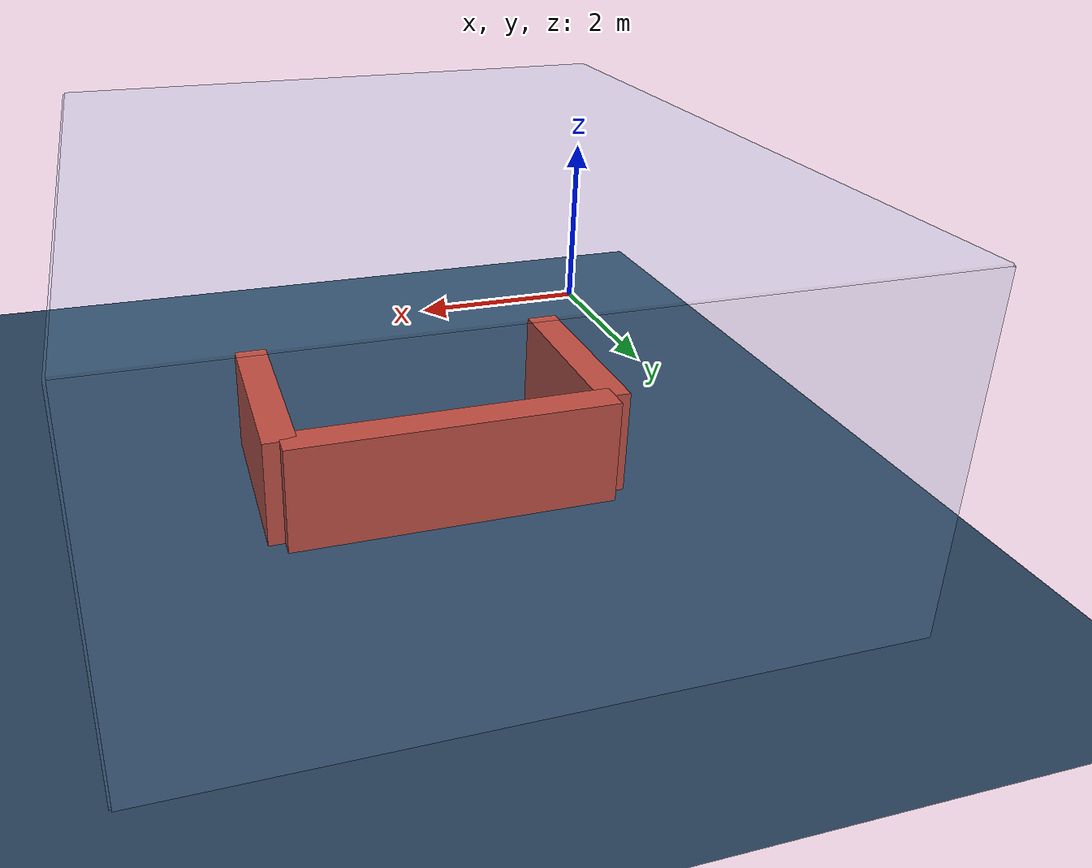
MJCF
<mujoco model="Cave APF scene">
    <option integrator="RK4" density="1.225" viscosity="1.8e-5" timestep="0.001"/>
    <compiler inertiafromgeom="false" meshdir="assets" autolimits="true"/>
    <statistic center="3 3.5 1.5" extent="4.5"/>

    <visual>
        <headlight diffuse="0.6 0.6 0.6" ambient="0.5 0.5 0.5" specular="0 0 0"/>
        <rgba haze="0.15 0.25 0.35 0" fog="1 1 1 0"/>
        <map fogstart="0" fogend="0"/>
        <global azimuth="-30" elevation="-25" ellipsoidinertia="true"/>
    </visual>

    <asset>
        <texture type="skybox" builtin="gradient" rgb1="0.3 0.5 0.7" rgb2="0 0 0" width="512" height="3072"/>
        <texture type="2d" name="groundplane" builtin="checker" mark="edge"
                 rgb1="0.2 0.3 0.4" rgb2="0.1 0.2 0.3" markrgb="0.8 0.8 0.8" width="512" height="512"/>
        <material name="groundplane" texture="groundplane" texuniform="true" texrepeat="5 7" reflectance="0.2"/>
        <!-- Semi-transparent glass walls for the bounding box -->
        <material name="boundary" rgba="0.5 0.7 0.9 0.12"/>
        <!-- Solid obstacle material -->
        <material name="obstacle" rgba="0.85 0.25 0.15 1.0"/>
    </asset>

    <worldbody>
        <light pos="3 3.5 3" dir="0 0 -1" directional="true"/>

        <!-- Floor -->
        <geom name="floor" size="0 0 0.05" type="plane" material="groundplane"/>

        <!-- ── Bounding box walls (6 m × 7 m × 3 m) ──────────────────────────
             contype/conaffinity=0 → visual only, drone passes through in state control -->
        <geom name="ceiling"  type="box" pos="3.0 3.5 3.0"  size="3.0 3.5 0.02" material="boundary" contype="0" conaffinity="0"/>
        <geom name="wall_xn"  type="box" pos="0.0 3.5 1.5"  size="0.02 3.5 1.5" material="boundary" contype="0" conaffinity="0"/>
        <geom name="wall_xp"  type="box" pos="6.0 3.5 1.5"  size="0.02 3.5 1.5" material="boundary" contype="0" conaffinity="0"/>
        <geom name="wall_yn"  type="box" pos="3.0 0.0 1.5"  size="3.0 0.02 1.5" material="boundary" contype="0" conaffinity="0"/>
        <geom name="wall_yp"  type="box" pos="3.0 7.0 1.5"  size="3.0 0.02 1.5" material="boundary" contype="0" conaffinity="0"/>

        <geom name="u_back"  type="box" pos="3.0 4.5 0.5"  size="1.5  0.15 0.5" material="obstacle"/>
        <geom name="u_left"  type="box" pos="1.5 3.6 0.5"  size="0.15 0.9  0.5" material="obstacle"/>
        <geom name="u_right" type="box" pos="4.5 3.6 0.5"  size="0.15 0.9  0.5" material="obstacle"/>
    </worldbody>
</mujoco>
